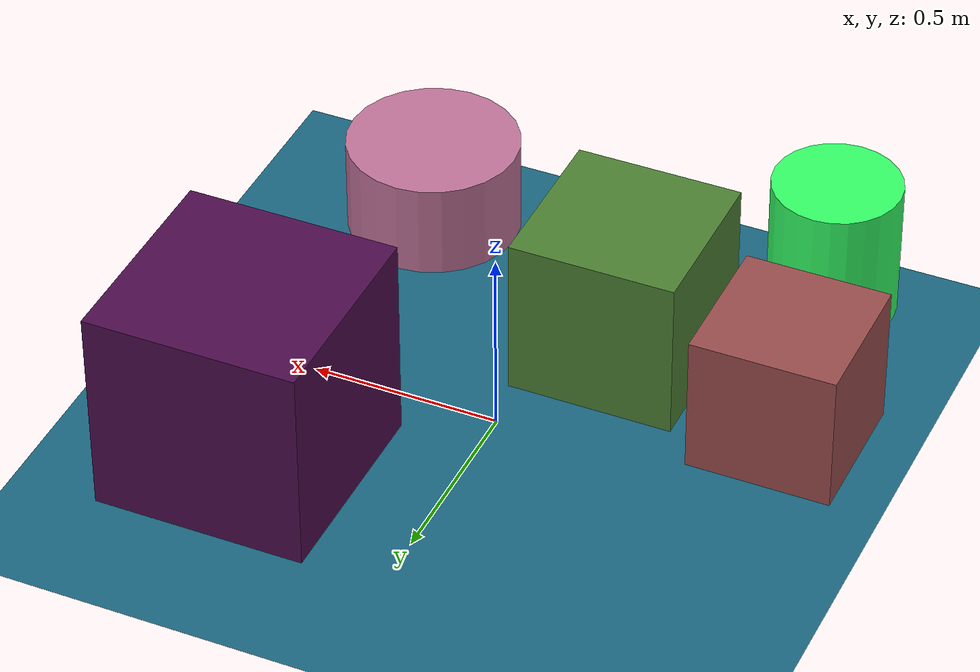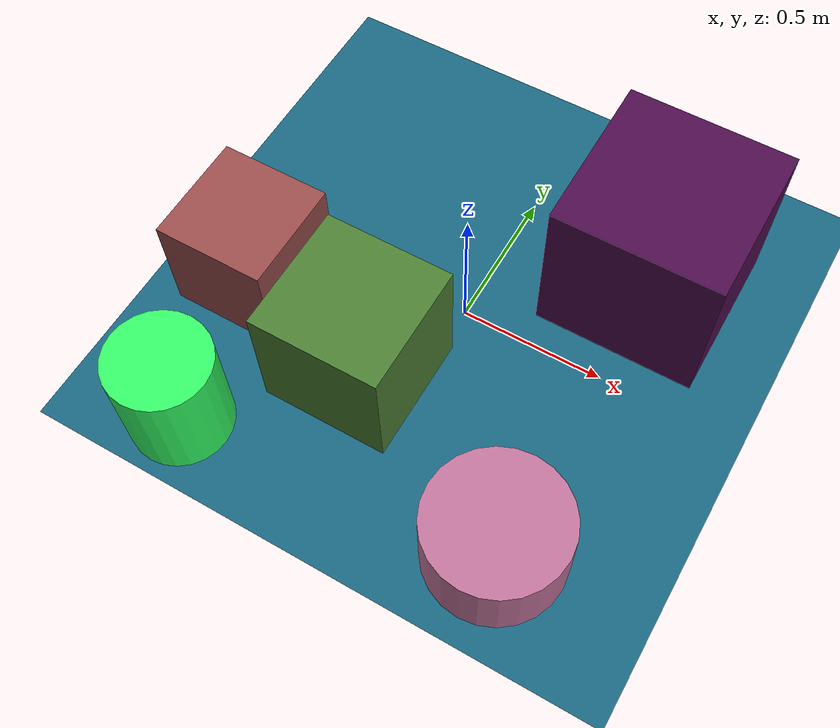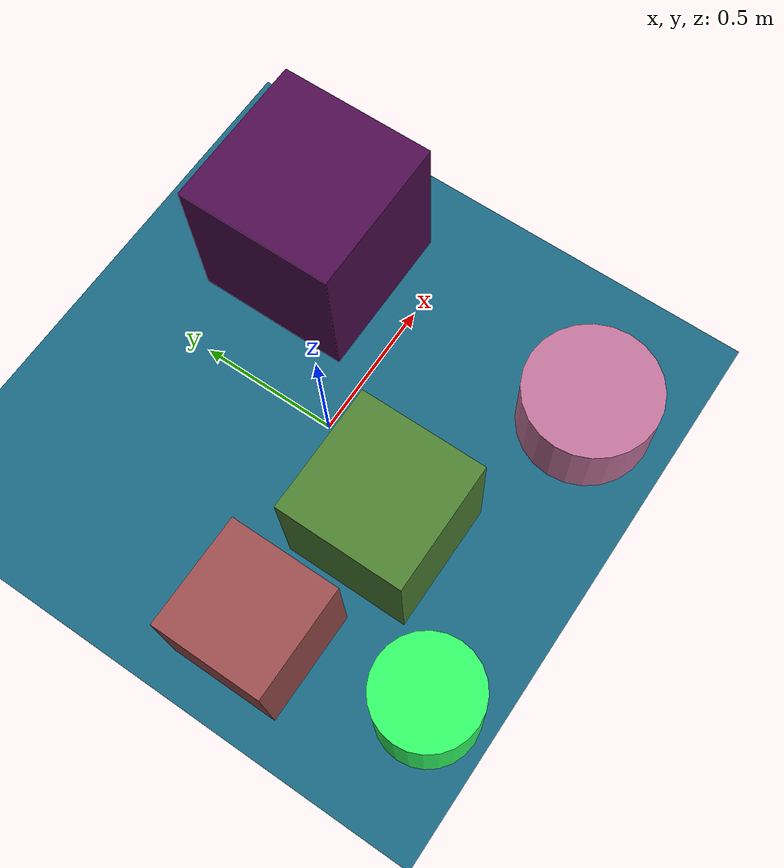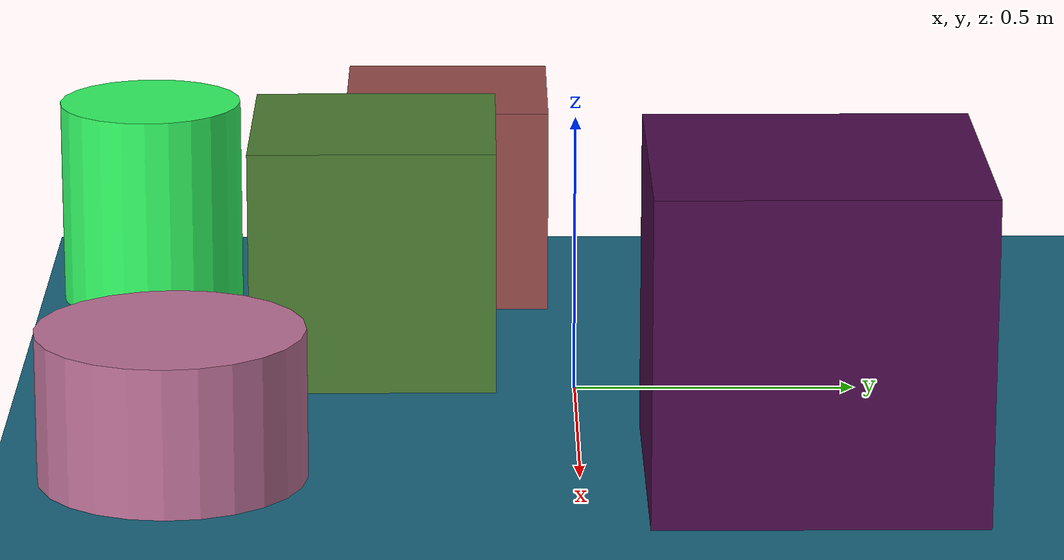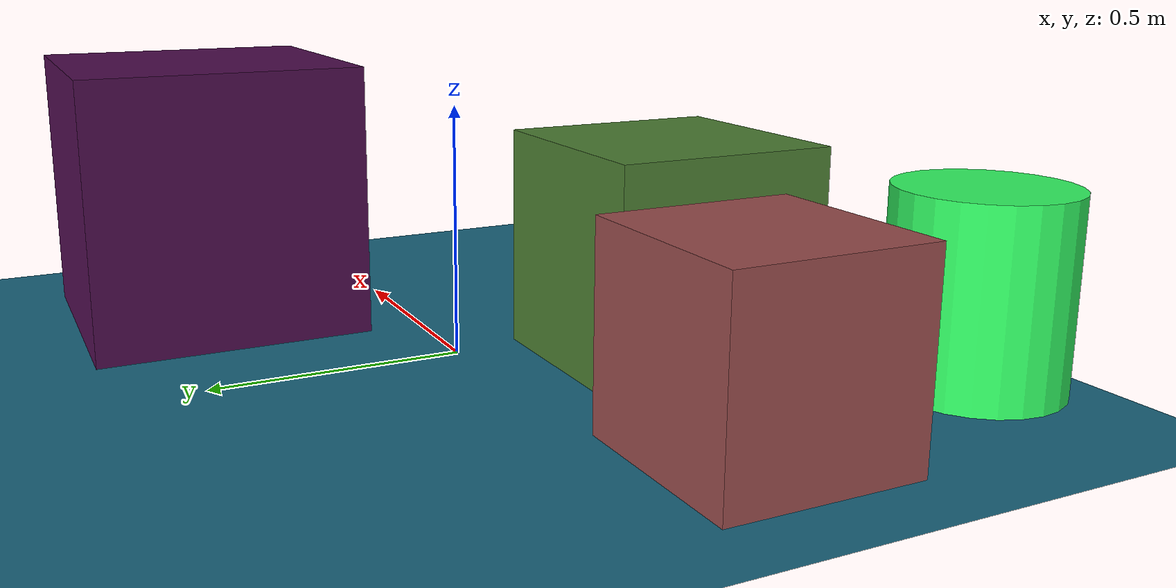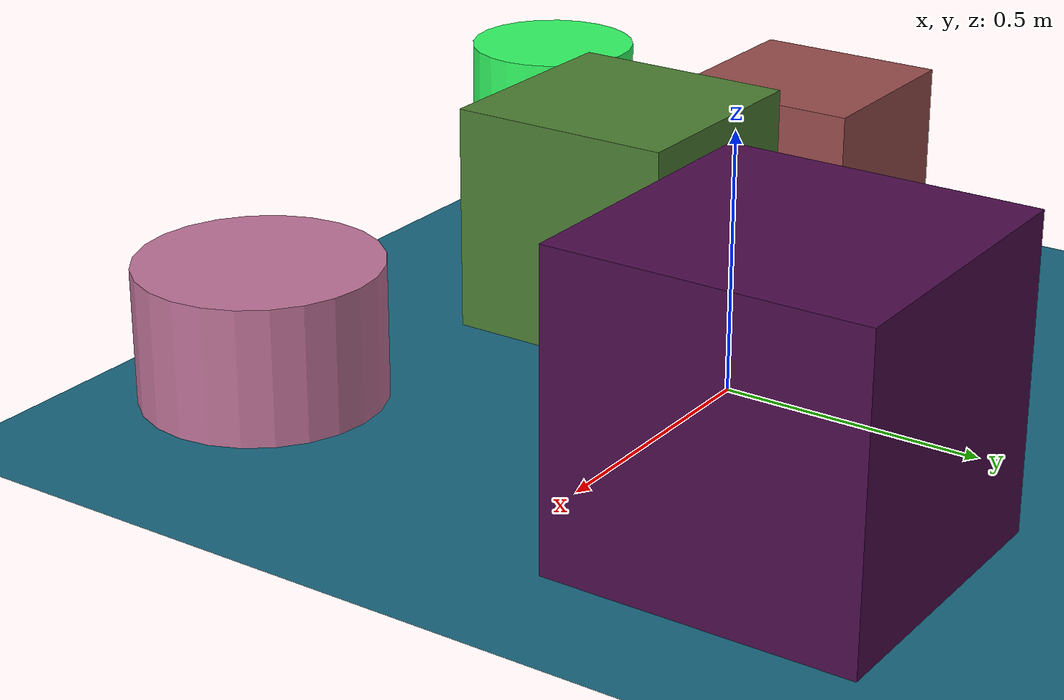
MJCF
<mujoco>
   <asset>
<texture type="skybox" builtin="gradient" rgb1="0.2 0.7 0.1" rgb2="0.2 0.9 0.3" width="256" height="256"/>
<texture name="flat_0" builtin="flat" rgb1="0.6 0.3 0.3" rgb2="0.6 0.3 0.3"  width="200" height="200"/>
<texture name="gradient_1" builtin="gradient" rgb1="0.2 0.0 0.3" rgb2="0.4 0.1 0.3" width="200" height="200"/>
<texture name="flat_2" builtin="flat" rgb1="0.3 0.5 0.2" rgb2="0.3 0.5 0.2"  width="200" height="200"/>
<texture name="flat_3" builtin="flat" rgb1="0.2 1.0 0.4" rgb2="0.2 1.0 0.4"  width="200" height="200"/>
<texture name="checker_4" builtin="checker" type="2d" rgb1="1.0 0.9 0.3" rgb2="0.5 0.0 0.9" width="200" height="200"/><material name="flat_0_mat" reflectance="0" texture="flat_0" texuniform="true"/>
<material name="gradient_1_mat" reflectance="0" texture="gradient_1" texuniform="true"/>
<material name="flat_2_mat" reflectance="0" texture="flat_2" texuniform="true"/>
<material name="flat_3_mat" reflectance="0" texture="flat_3" texuniform="true"/>
<material name="checker_4_mat" reflectance="0" texrepeat="10 10" texture="checker_4" texuniform="false" />
   </asset>

   <worldbody>
      <light diffuse=".9 .9 .9" pos="0 0 3" dir="0 0 -1"/>
     <geom type="plane" size="1 1 0.1" rgba="0.1 0.4 0.5 1"/>
<geom type="box" pos="-0.68 -0.23 0.19" size="0.19 0.19 0.19" material="flat_0_mat" />
<geom type="box" pos="0.49 0.39 0.28" size="0.28 0.28 0.28" material="gradient_1_mat" />
<geom type="box" pos="-0.19 -0.36 0.22" size="0.22 0.22 0.22" material="flat_2_mat" />
<geom type="cylinder" pos="-0.59 -0.79 0.19" size="0.17 0.19 0.19" material="flat_3_mat" />
<geom type="cylinder" pos="0.49 -0.69 0.13" size="0.23 0.13 0.13" material="checker_4_mat" /><camera euler="60 0 180" fovy="60" name="camera_a" pos="0 -1.5 1"></camera>   </worldbody>
</mujoco>
